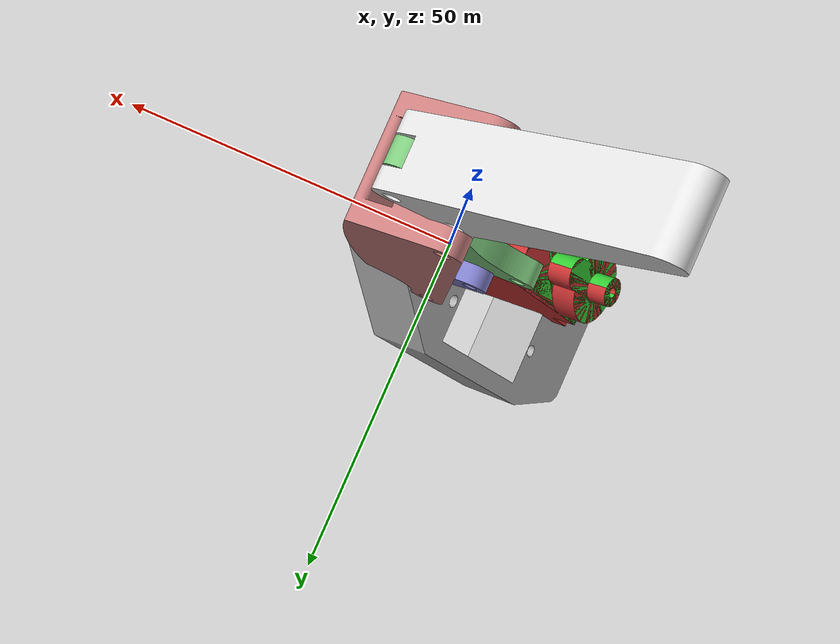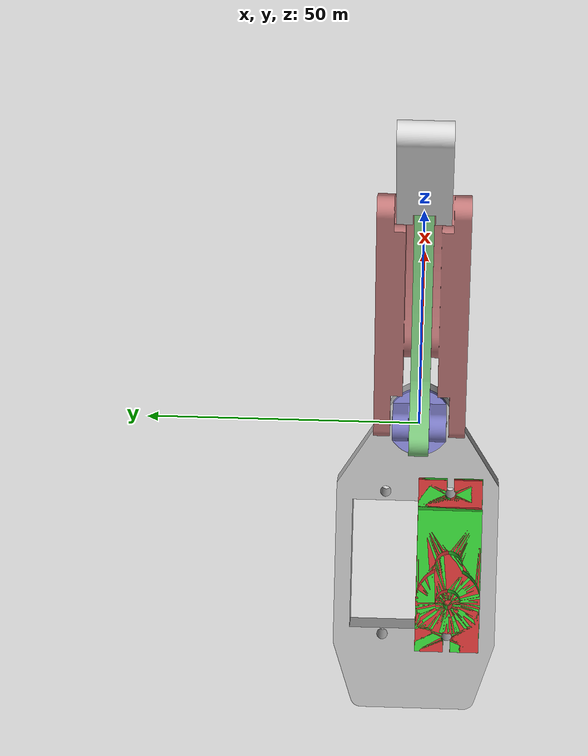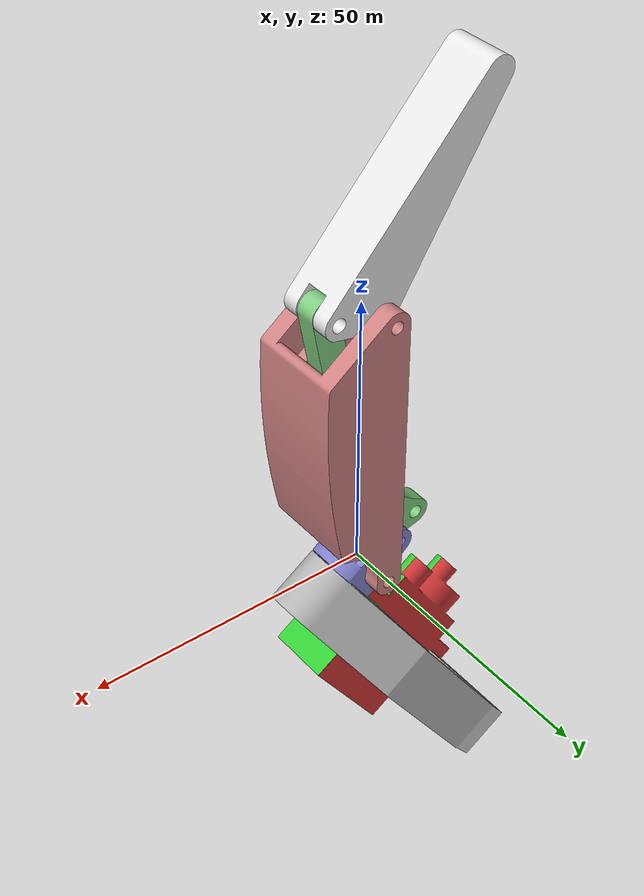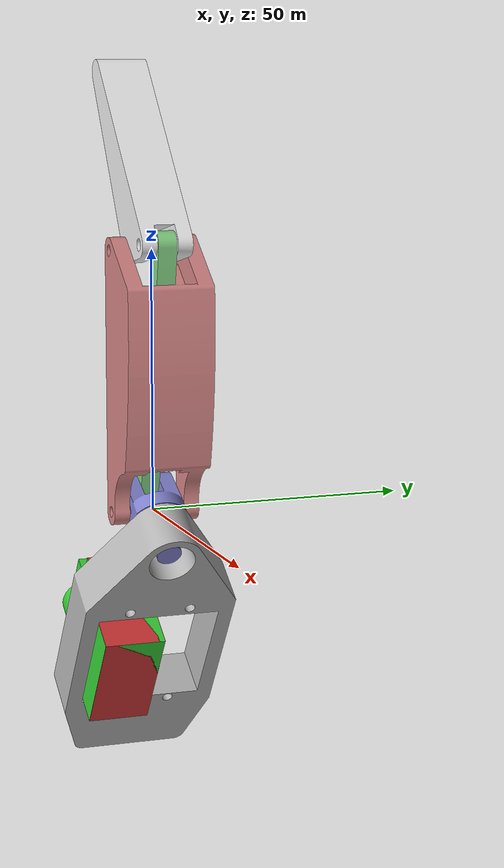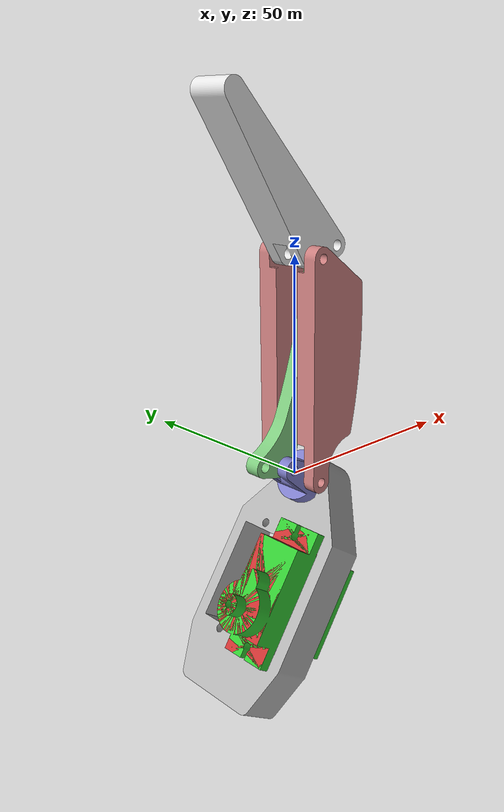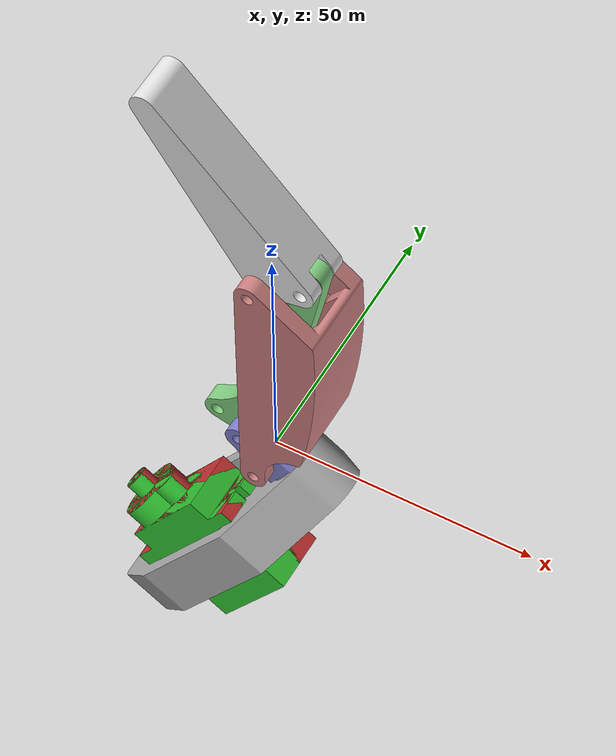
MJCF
<mujoco model="finger_levelB">
  <compiler angle="radian" meshdir="meshes" autolimits="true"/>
  <option gravity="0 0 -9.81" timestep="0.001"/>

  <asset>
    <mesh name="servo_frame" file="servo_frame.stl"/>
    <mesh name="servo_sg90" file="servo_sg90.stl"/>
    <mesh name="finger_base" file="finger_base.stl"/>
    <mesh name="finger_mid" file="finger_mid.stl"/>
    <mesh name="fingertip" file="fingertip.stl"/>
    <mesh name="transmission" file="transmission.stl"/>
  </asset>

  <default>
    <joint damping="0.15" armature="0.0002" frictionloss="0.005"/>
    <geom contype="1" conaffinity="1" margin="0.001" solref="0.002 1" solimp="0.9 0.95 0.001"/>
    <motor ctrllimited="true" ctrlrange="-1.57 1.57"/>
    <position ctrllimited="true" ctrlrange="-1.57 1.57" kp="50"/>
  </default>

  <worldbody>
    <!-- 舵机框架作为基座 -->
    <body name="base" pos="0 0 0">
      <geom name="base_geom" type="mesh" mesh="servo_frame" pos="0 0 0" quat="1 0 0 0"
            density="2700" rgba="0.7 0.7 0.7 1"/>

      <!-- 舵机1 - 安装在框架上 -->
      <body name="servo1" pos="0.02 0.015 0.01">
        <geom name="servo1_geom" type="mesh" mesh="servo_sg90" pos="0 0 0" quat="1 0 0 0"
              density="1500" rgba="0.8 0.2 0.2 1"/>
        <joint name="j_servo1" type="hinge" axis="0 1 0" pos="0 0 0" range="-1.57 1.57"/>
        <site name="s_servo1_out" pos="0.01 0 0" size="0.002" rgba="1 0 0 1"/>
      </body>

      <!-- 舵机2 - 安装在框架上 -->
      <body name="servo2" pos="0.02 -0.015 0.01">
        <geom name="servo2_geom" type="mesh" mesh="servo_sg90" pos="0 0 0" quat="1 0 0 0"
              density="1500" rgba="0.2 0.8 0.2 1"/>
        <joint name="j_servo2" type="hinge" axis="0 1 0" pos="0 0 0" range="-1.57 1.57"/>
        <site name="s_servo2_out" pos="0.01 0 0" size="0.002" rgba="0 1 0 1"/>
      </body>

      <!-- 指转部件（基节）- 连接到框架 -->
      <body name="link_base" pos="0.04 0 0.02">
        <geom name="link_base_geom" type="mesh" mesh="finger_base" pos="0 0 0" quat="1 0 0 0"
              density="1100" rgba="0.5 0.5 0.8 1"/>
        <joint name="j_base" type="hinge" axis="0 1 0" pos="0 0 0" range="-1.2 1.2"/>
        <site name="s_base_tip" pos="0.03 0 0" size="0.002" rgba="0 0 1 1"/>

        <!-- 指柱部件（中节）- 连接到指转 -->
        <body name="link_mid" pos="0.03 0 0">
          <geom name="link_mid_geom" type="mesh" mesh="finger_mid" pos="0 0 0" quat="1 0 0 0"
                density="1100" rgba="0.8 0.5 0.5 1"/>
          <joint name="j_mid" type="hinge" axis="0 1 0" pos="0 0 0" range="-1.2 1.2"/>
          <site name="s_mid_tip" pos="0.025 0 0" size="0.002" rgba="1 0 1 1"/>

          <!-- 指尖部件（末节）- 连接到指柱 -->
          <body name="link_tip" pos="0.025 0 0">
            <geom name="link_tip_geom" type="mesh" mesh="fingertip" pos="0 0 0" quat="1 0 0 0"
                  density="1100" rgba="0.9 0.9 0.9 1"/>
            <joint name="j_tip" type="hinge" axis="0 1 0" pos="0 0 0" range="-1.2 1.2"/>
            <site name="s_fingertip" pos="0.02 0 0" size="0.002" rgba="1 1 0 1"/>
          </body>
        </body>
      </body>

      <!-- 指传动部件 - 独立body，实现差动功能 -->
      <body name="link_trans" pos="0.04 0 0">
        <geom name="link_trans_geom" type="mesh" mesh="transmission" pos="0 0 0" quat="1 0 0 0"
              density="1100" rgba="0.5 0.8 0.5 1"/>
        <joint name="j_trans" type="hinge" axis="0 1 0" pos="0 0 0" range="-1.0 1.0"/>
        <site name="s_trans_output" pos="0.02 0 0" size="0.002" rgba="0 1 1 1"/>
      </body>
    </body>
  </worldbody>

  <!-- 执行器配置 -->
  <actuator>
    <!-- 舵机执行器 -->
    <position name="a_servo1" joint="j_servo1" kp="50"/>
    <position name="a_servo2" joint="j_servo2" kp="50"/>

    <!-- 指传动执行器（简化球头链杆连接） -->
    <position name="a_trans1" joint="j_trans" kp="40"/>

    <!-- 指节执行器（用于测试和调试） -->
    <position name="a_base" joint="j_base" kp="30"/>
    <position name="a_mid" joint="j_mid" kp="25"/>
    <position name="a_tip" joint="j_tip" kp="20"/>
  </actuator>

  <!-- 传感器配置 -->
  <sensor>
    <!-- 关节位置传感器 -->
    <jointpos joint="j_servo1" name="servo1_pos"/>
    <jointpos joint="j_servo2" name="servo2_pos"/>
    <jointpos joint="j_base" name="base_pos"/>
    <jointpos joint="j_mid" name="mid_pos"/>
    <jointpos joint="j_tip" name="tip_pos"/>
    <jointpos joint="j_trans" name="trans_pos"/>

    <!-- 关节速度传感器 -->
    <jointvel joint="j_servo1" name="servo1_vel"/>
    <jointvel joint="j_servo2" name="servo2_vel"/>
    <jointvel joint="j_base" name="base_vel"/>
    <jointvel joint="j_mid" name="mid_vel"/>
    <jointvel joint="j_tip" name="tip_vel"/>
    <jointvel joint="j_trans" name="trans_vel"/>

    <!-- 指尖力传感器 -->
    <force site="s_fingertip" name="fingertip_force"/>
    <torque site="s_fingertip" name="fingertip_torque"/>
  </sensor>

  <!-- 差动耦合约束（可选，用于实现真实的差动效果） -->
  <tendon>
    <spatial name="differential_coupling_1" limited="true" range="0.0 0.1">
      <site site="s_servo1_out"/>
      <site site="s_trans_output"/>
    </spatial>
    <spatial name="differential_coupling_2" limited="true" range="0.0 0.1">
      <site site="s_servo2_out"/>
      <site site="s_trans_output"/>
    </spatial>
  </tendon>

  <!-- 可视化设置 -->
  <visual>
    <global azimuth="120" elevation="-20"/>
    <headlight ambient="0.4 0.4 0.4" diffuse="0.8 0.8 0.8" specular="0.3 0.3 0.3"/>
  </visual>
</mujoco>
